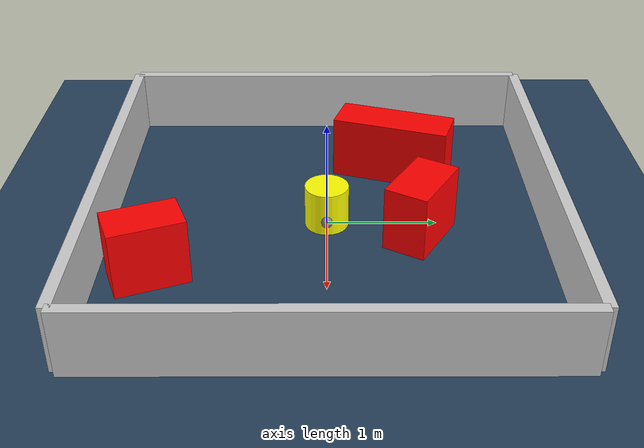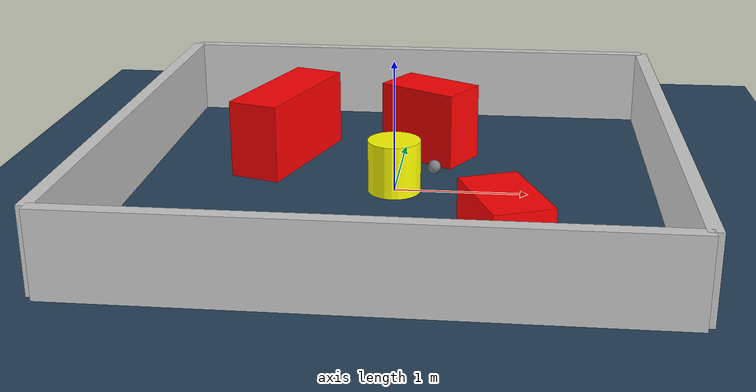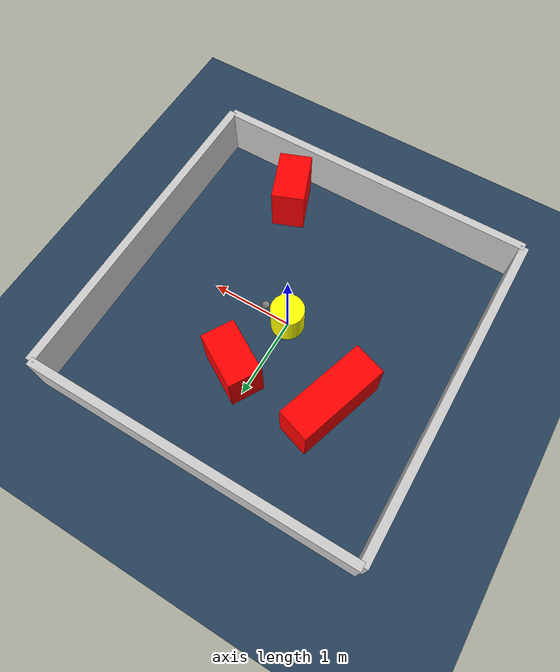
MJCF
<?xml version="1.0" ?>
<mujoco model="generated_environment">
  <option timestep="0.01" integrator="RK4" cone="elliptic"/>
  <default>
    <geom density="1"/>
  </default>
  <asset>
    <texture builtin="gradient" height="3072" rgb1="0.3 0.5 0.7" rgb2="0 0 0" type="skybox" width="512"/>
    <texture builtin="checker" height="300" mark="edge" markrgb="0.8 0.8 0.8" name="groundplane" rgb1="0.2 0.3 0.4" rgb2="0.1 0.2 0.3" type="2d" width="300"/>
    <material name="groundplane" reflectance="0.2" texrepeat="5 5" texture="groundplane" texuniform="true"/>
    <material name="robot" rgba="0.0 1.0 0.0 1"/>
  </asset>
  <worldbody>
    <light dir="0 0 -1" directional="true" pos="0 0 1.5"/>
    <geom condim="4" friction="1.0 0.005 0.001" material="groundplane" name="floor" size="0 0 0.05" type="plane"/>
    <body name="walls">
      <geom name="wall_1" condim="4" pos="-2.0 0.0 0.3" rgba="0.800000011920929 0.800000011920929 0.800000011920929 1.0" size="0.05 2.0 0.3" type="box"/>
      <geom name="wall_2" condim="4" pos="2.0 0.0 0.3" rgba="0.800000011920929 0.800000011920929 0.800000011920929 1.0" size="0.05 2.0 0.3" type="box"/>
      <geom name="wall_3" condim="4" pos="0.0 -2.0 0.3" rgba="0.800000011920929 0.800000011920929 0.800000011920929 1.0" size="2.0 0.05 0.3" type="box"/>
      <geom name="wall_4" condim="4" pos="0.0 2.0 0.3" rgba="0.800000011920929 0.800000011920929 0.800000011920929 1.0" size="2.0 0.05 0.3" type="box"/>
    </body>
    <body name="robot">
      <joint name="joint_x" type="slide" pos="0 0 0" axis="1 0 0"/>
      <joint name="joint_y" type="slide" pos="0 0 0" axis="0 1 0"/>
      <geom name="robot" type="sphere" pos="0.3 0.0 0.2" size="0.05" mass="5." friction="1.0 0.005 0.0001" condim="4" rgba="0.5 0.5 0.5 1.0"/>
      <site name="sensor_ball"/>
    </body>
    <body name="obstacle_movable_1">
      <geom name="obstacle_movable_1" condim="4" pos="0.0 0.0 0.2" euler="0 0 0.0" friction="1.0 0.005 0.001" rgba="1.0 1.0 0.0 1.0" size="0.2 0.2 0.0" type="cylinder" mass="0.1"/>
      <joint type="free"/>
    </body>
    <body name="obstacle_2_static">
      <geom name="obstacle_2_static" condim="4" pos="-0.9297486878108816 0.6574725009783549 0.3" euler="0 0 72.01249751052104" friction="1.0 0.005 0.001" rgba="1 0 0 1" size="0.5557988942417809 0.2 0.3" type="box"/>
    </body>
    <body name="obstacle_3_static">
      <geom name="obstacle_3_static" condim="4" pos="0.8289084315170134 -1.5050057874707108 0.3" euler="0 0 111.25815419187309" friction="1.0 0.005 0.001" rgba="1 0 0 1" size="0.32563325083382144 0.2 0.3" type="box"/>
    </body>
    <body name="obstacle_4_static">
      <geom name="obstacle_4_static" condim="4" pos="0.2093265574994978 0.8315141106058765 0.3" euler="0 0 149.73363583813762" friction="1.0 0.005 0.001" rgba="1 0 0 1" size="0.33318959988344843 0.2 0.3" type="box"/>
    </body>
  </worldbody>
  <actuator>
    <motor name="actuator_x" joint="joint_x" gear="1" ctrlrange="-1 1"/>
    <motor name="actuator_y" joint="joint_y" gear="1" ctrlrange="-1 1"/>
  </actuator>
</mujoco>
